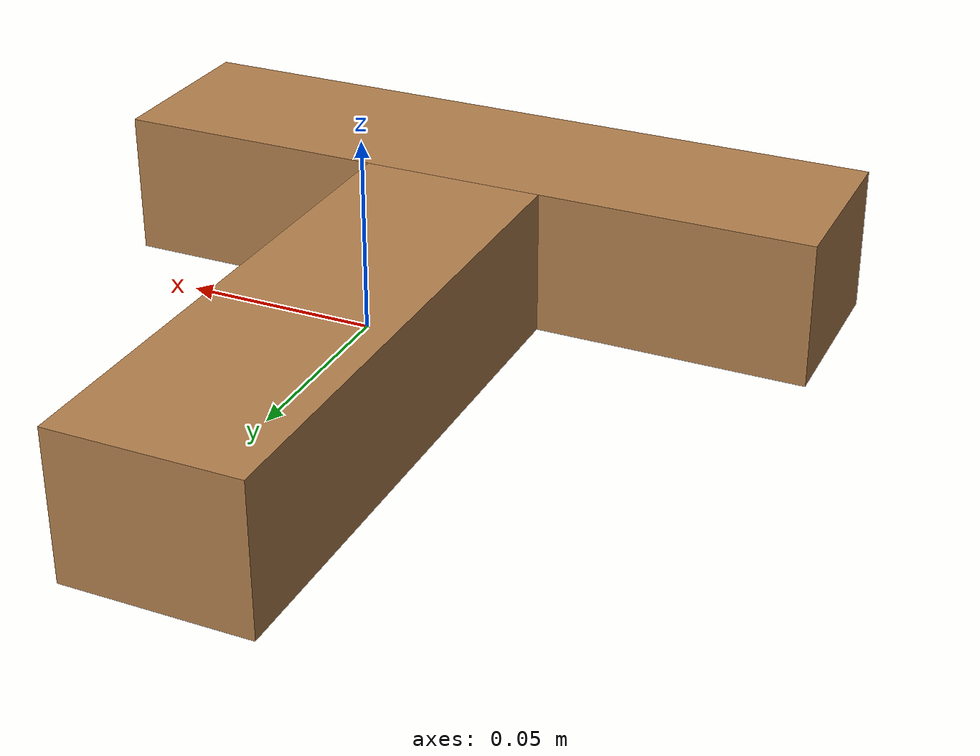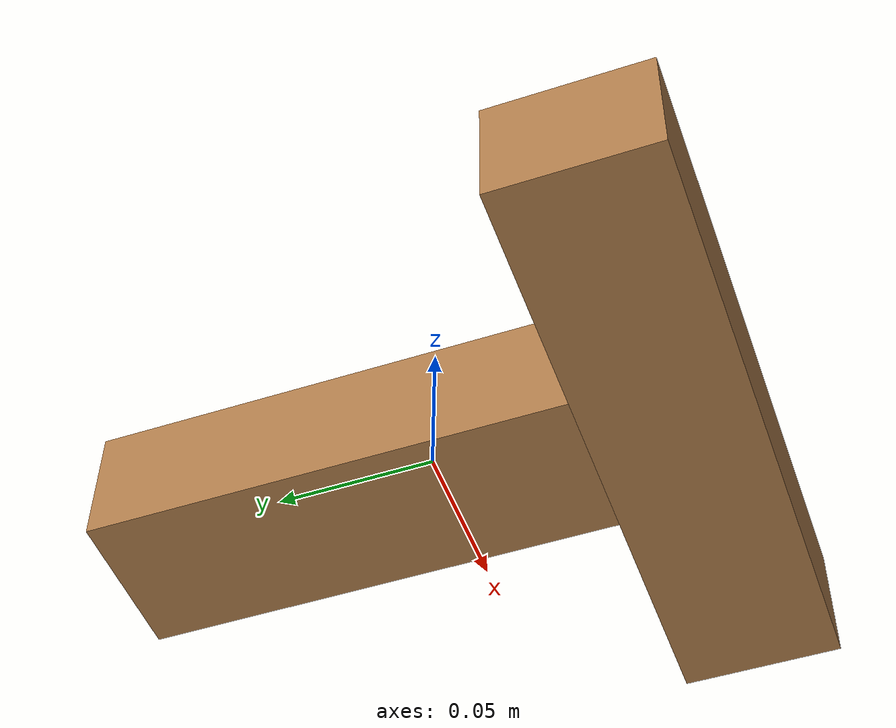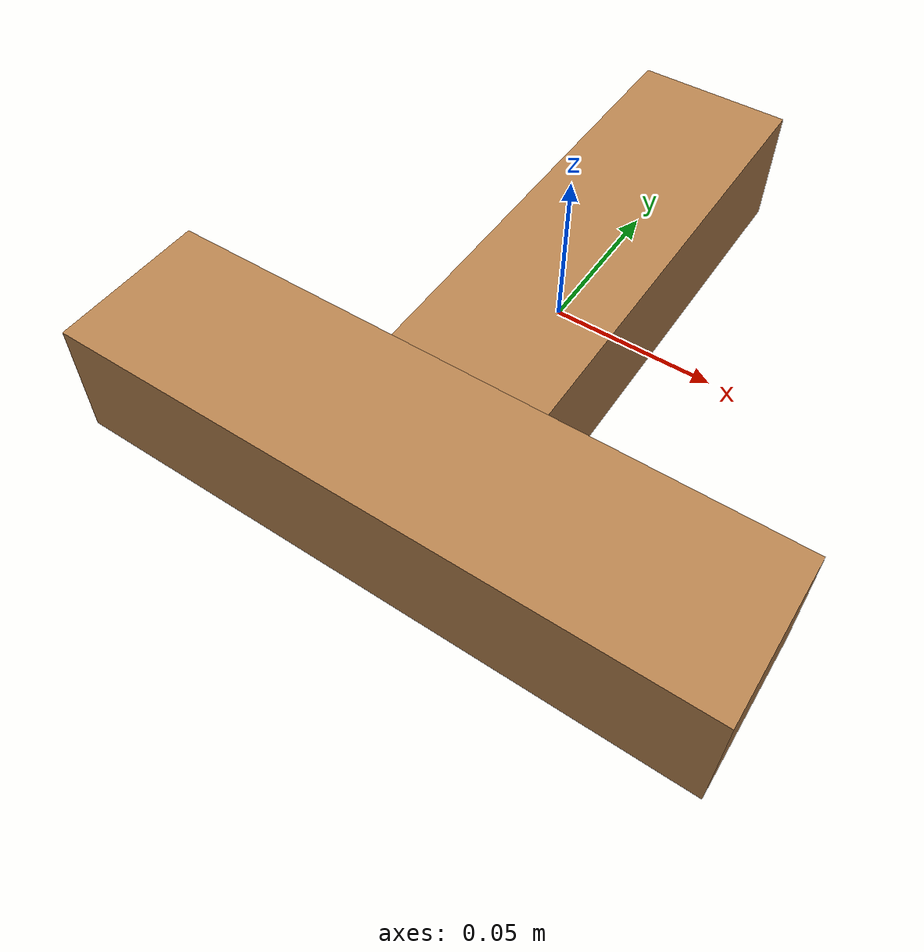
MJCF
<mujoco model="box_cut">
  <asset>
    <texture file="../../textures/red-wood.png" name="tex-box_cut" type="2d"/>
    <material name="redwood" reflectance="0.7" texrepeat="5 5" texture="tex-box_cut" texuniform="true"/>
  </asset>
  <worldbody>
    <body>
      <body name="object">
        <geom pos="0 -0.075 0" type="box" size="0.1 0.025 0.02" solimp="1.0 1.0 0.001" solref="0.02 1.0" density="100" friction="0.5 0.005 0.0001" material="redwood" group="0"/>
        <geom pos="0 0.025 0" type="box" size="0.025 0.075 0.02" solimp="1.0 1.0 0.001" solref="0.02 1.0" density="100" friction="0.5 0.005 0.0001" material="redwood" group="0"/>

        <geom pos="0 -0.075 0" type="box" size="0.1 0.025 0.02" conaffinity="0" contype="0"  rgba="0.5 0 0 0.3" group="1"/>
        <geom pos="0 0.025 0" type="box" size="0.025 0.075 0.02" conaffinity="0" contype="0"  rgba="0.5 0 0 0.3" group="1"/>
      </body>

      <site rgba="0 0 0 0" size="0.005" pos="0 0 -0.02" name="bottom_site"/>
      <site rgba="0 0 0 0" size="0.005" pos="0 0 0.02" name="top_site"/>
      <site rgba="0 0 0 0" size="0.005" pos="0.142 0.142 0" name="horizontal_radius_site"/>

    </body>
  </worldbody>
</mujoco>
